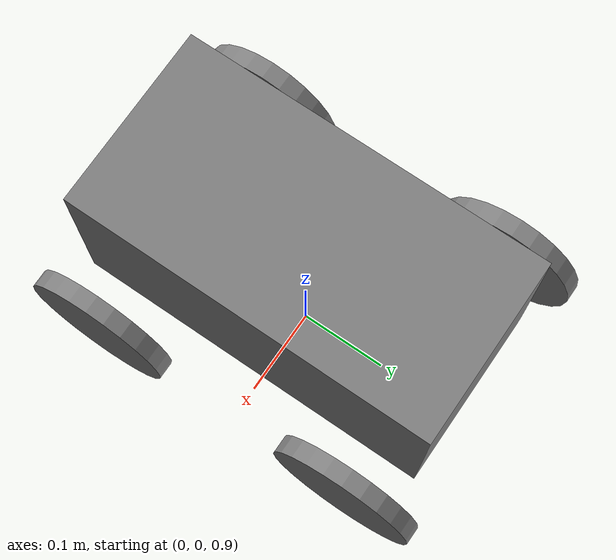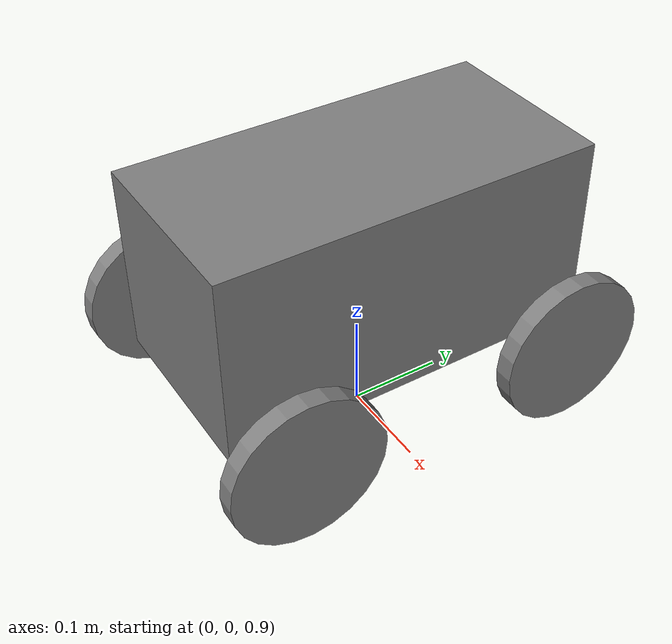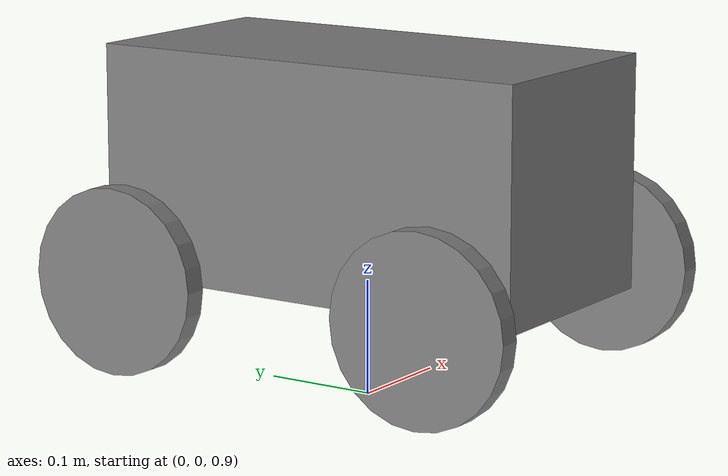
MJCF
<mujoco model="kiwibot v1">
    <option timestep="0.005" solver="CG" iterations="30" tolerance="1e-6"/>
    <size memory="20M"/>

    <visual>
        <map force="0.1" zfar="30"/>
        <rgba haze="0.15 0.25 0.35 1"/>
        <quality shadowsize="2048"/>
        <global offwidth="800" offheight="800"/>
    </visual>

    <asset>
        <texture type="skybox" builtin="gradient" rgb1="0.3 0.5 0.7" rgb2="0 0 0" width="512" height="512"/>
        <texture name="plane" type="2d" builtin="checker" rgb1=".2 .3 .4" rgb2=".1 0.15 0.2" width="512" height="512" mark="cross" markrgb=".8 .8 .8"/>
        <material name="plane" reflectance="0.3" texture="plane" texrepeat="1 1" texuniform="true"/>
    </asset>

    <worldbody>
        <geom name="floor" pos="0 0 -1" size="0 0 .25" type="plane" material="plane" condim="3"/>
        <light directional="true" diffuse=".2 .2 .2" specular="0 0 0" pos="0 0 5" dir="0 0 -1" castshadow="false"/>
        <light directional="false" diffuse=".8 .8 .8" specular="0.3 0.3 0.3" pos="0 0 4" dir="0 0 -1"/>

        <!-- car -->
        <body name="car" pos="0 0 1">
            <freejoint/>
            <body name="base" pos="0 0 0.1">
                <geom name="base" type="box" size="0.1 0.2 0.1"/>
             </body>
             <body name="wheel1" pos="0.15 0.15 0.01">
                 <geom
                    name="wheel1"
                    type="cylinder"
                    size="0.08 0.01"
                    quat="1 0 1 0"
                    solimp=".99 .99 .01"
                     solref=".001 1"
                />
                <joint name="joint1" pos="0 0 0" axis="1 0 0"/>
            </body>
            <body name="wheel2" pos="-0.15 0.15 0.01">
                <geom
                    name="wheel2"
                    type="cylinder"
                    size="0.08 .01"
                    quat="1 0 1 0"
                />
                <joint name="joint2" pos="0 0 0" axis="-1 0 0"/>
            </body>
            <body name="wheel3" pos="0.15 -0.15 0.01">
                <geom
                    name="wheel3"
                    type="cylinder"
                    size="0.08 .01"
                    quat="1 0 1 0"
                />
                <joint name="joint3" pos="0 0 0" axis="1 0 0"/>
            </body>
            <body name="wheel4" pos="-0.15 -0.15 0.01">
                <geom
                    name="wheel4"
                    type="cylinder"
                    size="0.08 .01"
                    quat="1 0 1 0"
                />
                <joint name="joint4" pos="0 0 0" axis="-1 0 0"/>
            </body>
        </body>
    </worldbody>
</mujoco>
